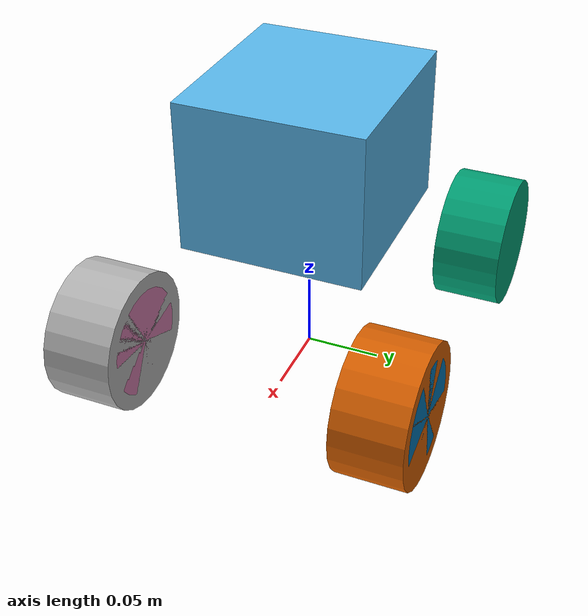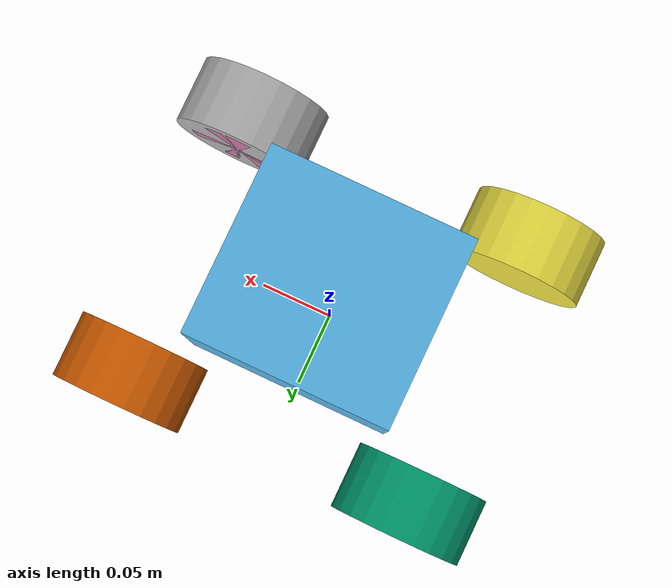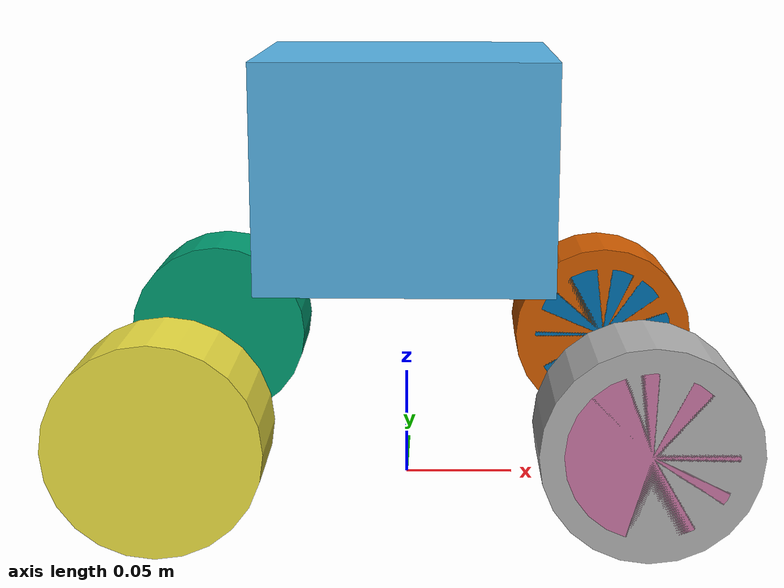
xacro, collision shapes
<?xml version="1.0"?>
<!--Auto: Zhui Li-->

<robot name="limo_ackerman" xmlns:xacro="http://www.ros.org/wiki/xacro">

    <!-- assoziiert mit anderen hergestellten Modellen -->
    <xacro:arg name="robot_namespace" default="/" />
    <xacro:include filename="$(find limo_car)/urdf/limo_anteil.xacro" />
    <xacro:include filename="$(find limo_car)/urdf/limo_steering_hinge.xacro" />

    <!-- definiert Value -->
    <xacro:property name="M_PI" value="3.14159"/>

    <xacro:property name="base_mass" value="2.1557"/>
    <xacro:property name="base_x_size" value="0.13" />
    <xacro:property name="base_y_size" value="0.12" />
    <xacro:property name="base_z_size" value="0.10" />

    <xacro:property name="wheelbase" value="0.2"/>
    <xacro:property name="track" value="0.14"/>
    <xacro:property name="wheel_vertical_offset" value="-0.100998" />

    <xacro:property name="wheel_mass" value="0.5" />
    <xacro:property name="wheel_length" value="0.045" />
    <xacro:property name="wheel_radius" value="0.045" />

    <!-- definieren die Macro-Function für die Rechnungen der Matrizen für Trägheitsmoment-->
    <!-- Kugel -->
    <xacro:macro name="sphere_inertial_matrix" params="m r">
        <inertial>
            <origin xyz="0.0 0.0 0.0" />
            <mass value="${m}" />
            <inertia ixx="${2*m*r*r/5}" ixy="0" ixz="0"
                     iyy="${2*m*r*r/5}" iyz="0"
                     izz="${2*m*r*r/5}" />
        </inertial>
    </xacro:macro>
    <!-- Zylinder -->
    <xacro:macro name="cylinder_inertial_matrix" params="m r h">
        <inertial>
            <origin xyz="0.0 0.0 0.0" />
            <mass value="${m}" />
            <inertia ixx="${m*(3*r*r+h*h)/12}" ixy = "0" ixz = "0"
                     iyy="${m*(3*r*r+h*h)/12}" iyz = "0"
                     izz="${m*r*r/2}" />
        </inertial>
    </xacro:macro>
    <!-- Quader -->
    <xacro:macro name="box_inertial_matrix" params="m w l h">
        <inertial>
            <origin xyz="0.0 0.0 0.0" />
            <mass value="${m}" />
            <inertia ixx="${m*(w*w+h*h)/12}" ixy = "0" ixz = "0"
                     iyy="${m*(h*h+l*l)/12}" iyz = "0"
                     izz="${m*(w*w+l*l)/12}" />
        </inertial>
    </xacro:macro>

    <!-- definiert ein Nullpunkt, um Modell aufzubauen. Es ist einfach für weitere Darstellungspostion in Simulation-Umgebung -->
    <link name="base_footprint"/>

    <joint name="base_joint" type="fixed">
        <parent link="base_footprint"/>
        <child link="base_link"/>
        <origin xyz="0.0 0.0 0.15" rpy="0 0 0"/>
    </joint>

    <!-- herstellt base_link als Karosserie -->
    <link name="base_link">
        <visual>
            <origin xyz="0 0 -0.15" rpy="0 0 1.57" />
            <geometry>
                <mesh filename="model://limo_ackermann/meshes/limo_base.dae" scale="1 1 1"/>
            </geometry>
        </visual>
        <!-- Modell für physikalische Kollision zu modellieren. -->
        <collision>
            <origin xyz="0 0 0" rpy="0 0 0" />
            <geometry>
                <box size="${base_x_size} ${base_y_size} ${base_z_size}"/>
            </geometry>
        </collision>
        <xacro:box_inertial_matrix  m="${base_mass}" w="${base_x_size}" l="${base_y_size}" h="${base_z_size}" />
    </link>

<!--    &lt;!&ndash; mit macro-function renchnet die Trägheitsmoment &ndash;&gt;-->
<!--                     iyy="0.96" iyz="0"-->
<!--    &lt;!&ndash; verbindet link für Trägheitsmonent und Modell &ndash;&gt;-->

    <!--  Zwei hinten Räder werden anhand eines externen Modells erstellt und mit dem Körper verbunden-->
    <link name="hinten_left_wheel_link">
        <visual>
            <origin xyz="0 0 0" rpy="0 0 0" />
            <geometry>
                <mesh filename="model://limo_ackermann/meshes/limo_wheel.dae" />
            </geometry>
        </visual>
        <collision>
            <origin xyz="0 ${wheel_length/2} 0" rpy="1.57 0 0" />
            <geometry>
                <cylinder length="${wheel_length}" radius="${wheel_radius}" />
            </geometry>
        </collision>

        <xacro:cylinder_inertial_matrix  m="${wheel_mass}" r="${wheel_radius}" h="${wheel_length}"/>

    </link>

    <joint name="hinten_left_wheel" type="continuous">
        <parent link="base_link"/>
        <child link="hinten_left_wheel_link"/>
        <origin xyz="${-wheelbase/2} ${track/2} ${wheel_vertical_offset}" rpy="0 0 0" />
        <axis xyz="0 1 0"/>
    </joint>

    <link name="hinten_right_wheel_link">
        <visual>
            <origin xyz="0 0 0" rpy="0 0 0" />
            <geometry>
                <mesh filename="model://limo_ackermann/meshes/limo_wheel.dae" />
            </geometry>
        </visual>
        <collision>
            <origin xyz="0 ${wheel_length/2} 0" rpy="1.57 0 0" />
            <geometry>
                <cylinder length="${wheel_length}" radius="${wheel_radius}" />
            </geometry>
        </collision>
        <xacro:cylinder_inertial_matrix  m="${wheel_mass}" r="${wheel_radius}" h="${wheel_length}"/>
    </link>

    <joint name="hinten_right_wheel" type="continuous">
        <parent link="base_link"/>
        <child link="hinten_right_wheel_link"/>
        <origin xyz="${-wheelbase/2} ${-track/2} ${wheel_vertical_offset}" rpy="${M_PI} 0 0" />
        <axis xyz="0 -1 0"/>
    </joint>

    <!-- ruft Steuerscharnier mit vorderem Räder auf -->
    <xacro:limo_left_steering_hinge parent_prefix="base_link" wheel_prefix="left_steering_hinge">
        <origin xyz="${wheelbase/2} ${track/2} ${wheel_vertical_offset}" rpy="0 0 0" />
    </xacro:limo_left_steering_hinge>

    <xacro:limo_right_steering_hinge parent_prefix="base_link" wheel_prefix="right_steering_hinge">
        <origin xyz="${wheelbase/2} ${-track/2} ${wheel_vertical_offset}" rpy="${M_PI} 0 0" />
    </xacro:limo_right_steering_hinge>
</robot>

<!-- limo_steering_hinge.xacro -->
<!--Auto: Zhui Li-->

<robot name="limo_steering_hinge" xmlns:xacro="http://www.ros.org/wiki/xacro">

    <xacro:macro name="limo_left_steering_hinge" params="parent_prefix wheel_prefix *joint_pose">
        <link name="${wheel_prefix}">
            <inertial>
                <!-- diese Daten kommen aus das Internet -->
                <mass value="0.25" />
                <inertia ixx="0.00525" ixy="0" ixz="0" iyy="0.00035" iyz="0" izz="0.00525" />
                <origin xyz="0 0 0" />
            </inertial>
            <visual>
                <origin xyz="0 0 0" rpy="0 0 0" />
                <geometry>
                    <!-- es ist sehr klein -->
                    <cylinder length="0.0001" radius="0.0001" />
                </geometry>
            </visual>
            <collision>
                <origin xyz="0 ${wheel_length/2} 0" rpy="1.57 0 0" />
                <geometry>
                    <cylinder length="${wheel_length}" radius="${wheel_radius-0.01}" />
                </geometry>
            </collision>
        </link>

        <joint name="${wheel_prefix}_wheel" type="revolute">
            <parent link="${parent_prefix}"/>
            <child link="${wheel_prefix}"/>
            <xacro:insert_block name="joint_pose"/>
            <axis xyz="0 0 1" />
            <limit lower="-0.523598767" upper="0.523598767" effort="5" velocity="0.5" />
            <dynamics damping="1.0" friction="2.0"/>
        </joint>

        <link name="front_left_wheel_link">
            <inertial>
                <mass value="0.25" />
                <inertia ixx="0.00525" ixy="0" ixz="0" iyy="0.00035" iyz="0" izz="0.00525" />
                <origin xyz="0 0 0" />
            </inertial>
            <visual>
                <origin xyz="0 0 0" rpy="0 0 0" />
                <geometry>
                    <mesh filename="model://limo_ackermann/meshes/limo_wheel.dae" />
                </geometry>
            </visual>
            <collision>
                <origin xyz="0 ${wheel_length/2} 0" rpy="1.57 0 0" />
                <geometry>
                    <cylinder length="${wheel_length}" radius="${wheel_radius}" />
                </geometry>
            </collision>
        </link>

        <joint name="front_left_wheel" type="continuous">
            <parent link="${wheel_prefix}"/>
            <child link="front_left_wheel_link"/>
            <origin xyz="0 0 0" rpy="0 0 0" />
            <axis xyz="0 1 0"/>
        </joint>
    </xacro:macro>

    <xacro:macro name="limo_right_steering_hinge" params="parent_prefix wheel_prefix *joint_pose">
        <link name="${wheel_prefix}">
            <inertial>
                <mass value="0.25" />
                <inertia ixx="0.00525" ixy="0" ixz="0" iyy="0.00035" iyz="0" izz="0.00525" />
                <origin xyz="0 0 0" />
            </inertial>
            <visual>
                <origin xyz="0 0 0" rpy="0 0 0" />
                <geometry>
                    <cylinder length="0.0001" radius="0.0001" />
                </geometry>
            </visual>
            <collision>
              <origin xyz="0 ${wheel_length/2} 0" rpy="1.57 0 0" />
              <geometry>
                  <cylinder length="${wheel_length}" radius="${wheel_radius-0.01}" />
              </geometry>
            </collision>
        </link>

        <joint name="${wheel_prefix}_wheel" type="revolute">
            <parent link="${parent_prefix}"/>
            <child link="${wheel_prefix}"/>
            <xacro:insert_block name="joint_pose"/>
            <axis xyz="0 0 -1"/>
            <limit lower="-0.523598767" upper="0.523598767" effort="5" velocity="0.5" />
            <dynamics damping="1.0" friction="2.0"/>
        </joint>

        <link name="front_right_wheel_link">
            <inertial>
                <mass value="0.25" />
                <inertia ixx="0.00525" ixy="0" ixz="0" iyy="0.00035" iyz="0" izz="0.00525" />
                <origin xyz="0 0 0" />
            </inertial>
            <visual>
                <origin xyz="0 0 0" rpy="0 0 0" />
                <geometry>
                    <mesh filename="model://limo_ackermann/meshes/limo_wheel.dae" />
                </geometry>
            </visual>
            <collision>
                <origin xyz="0 ${wheel_length/2} 0" rpy="1.57 0 0" />
                <geometry>
                    <cylinder length="${wheel_length}" radius="${wheel_radius}" />
                </geometry>
            </collision>
        </link>

        <joint name="front_right_wheel" type="continuous">
            <parent link="${wheel_prefix}"/>
            <child link="front_right_wheel_link"/>
            <origin xyz="0 0 0" rpy="0 0  0" />
            <axis xyz="0 -1 0"/>
        </joint>
    </xacro:macro>
</robot>
